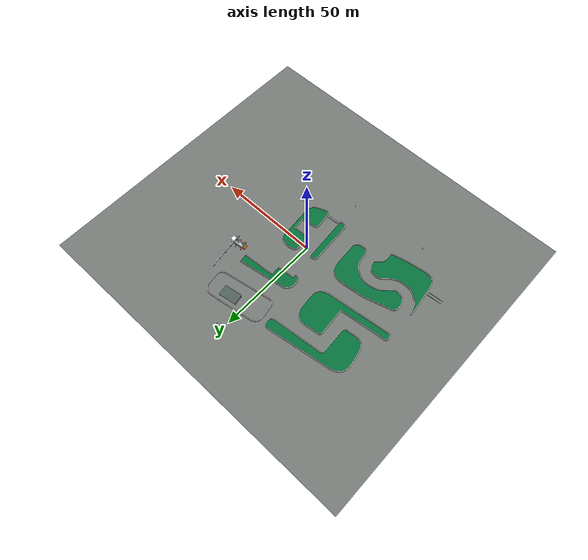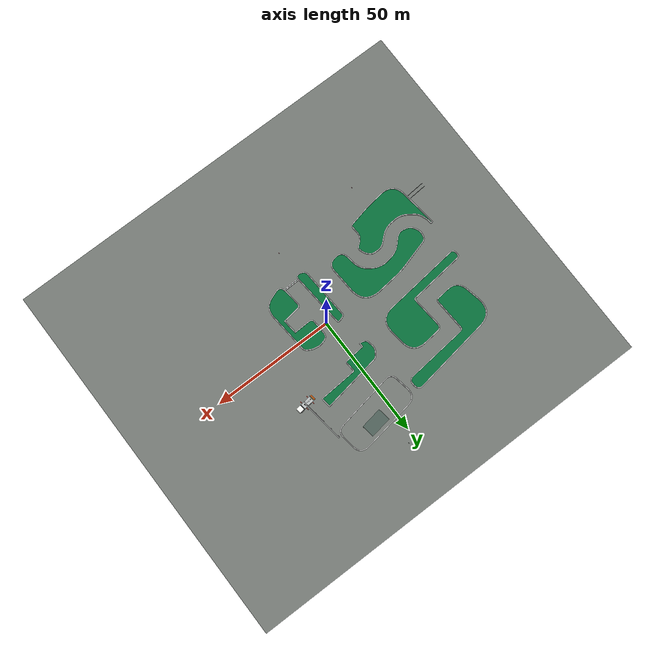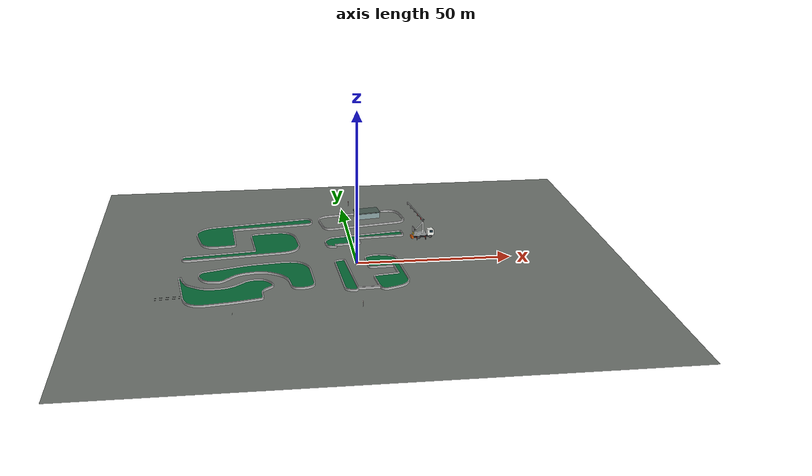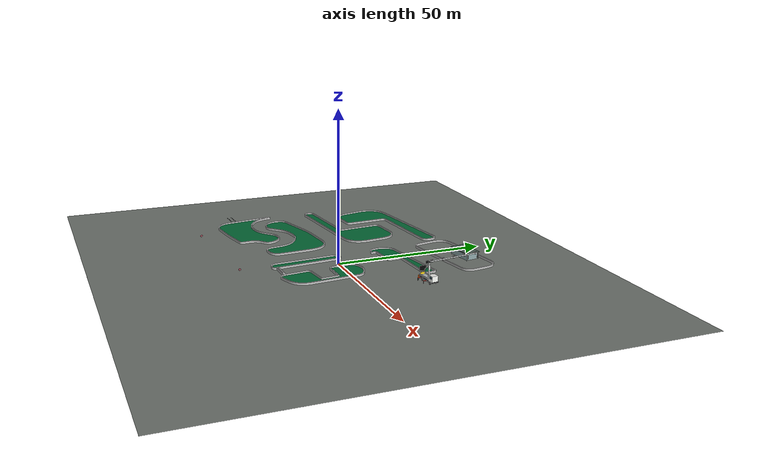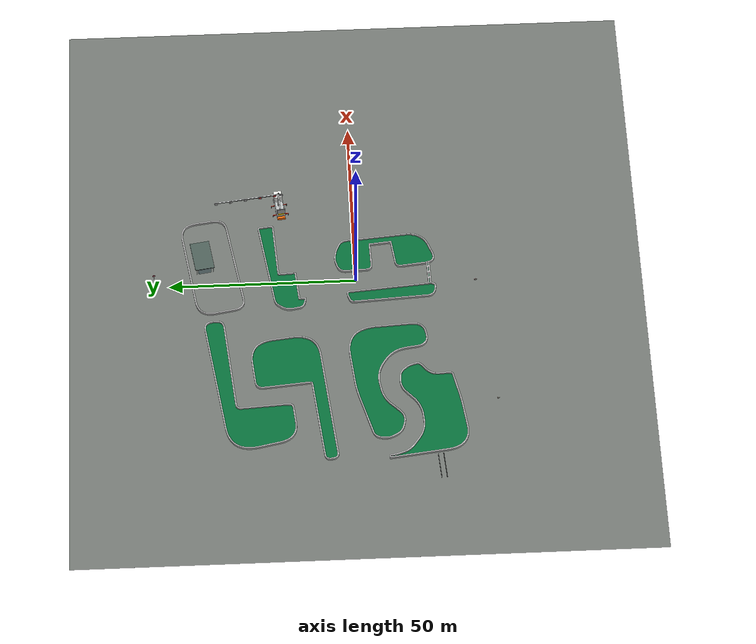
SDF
<sdf version="1.7">
 <world name="yongin_license_course">
  <physics type="ode">
   <max_step_size>0.002</max_step_size>
   <real_time_update_rate>500</real_time_update_rate>
  </physics>
  <spherical_coordinates>
   <surface_model>EARTH_WGS84</surface_model>
   <latitude_deg>37.288608845</latitude_deg>
   <longitude_deg>127.107298476</longitude_deg>
   <elevation>0.000</elevation>
   <heading_deg>208.536663</heading_deg>
  </spherical_coordinates>
  <scene>
   <ambient>0.82 0.82 0.82 1</ambient>
   <background>0.84 0.86 0.90 1</background>
   <grid>false</grid>
   <shadows>false</shadows>
  </scene>
  <light name="sun" type="directional">
   <pose>0 0 20 0 0 0</pose>
   <diffuse>0.8 0.8 0.8 1</diffuse>
   <specular>0.05 0.05 0.05 1</specular>
   <direction>-0.4 0.2 -1</direction>
  </light>
  <model name="floor_collision">
   <static>true</static>
   <pose>0.0000 0.0000 -0.0100 0.000000 0.000000 0.000000</pose>
   <link name="link">
    <collision name="collision"><geometry><box><size>171.0353 153.3308 0.0200</size></box></geometry></collision>
   </link>
  </model>
  <model name="ground_visual">
   <static>true</static>
   <pose>0.0000 0.0000 -0.0105 0.000000 0.000000 0.000000</pose>
   <link name="link">
    <visual name="visual">
     <cast_shadows>false</cast_shadows>
     <geometry><box><size>171.0353 153.3308 0.0010</size></box></geometry>
     <material>
      <ambient>0.45098 0.47059 0.45098 1</ambient>
      <diffuse>0.45098 0.47059 0.45098 1</diffuse>
      <emissive>0 0 0 1</emissive>
      <specular>0.02 0.02 0.02 1</specular>
     </material>
    </visual>
   </link>
  </model>
  <model name="green_island_00">
   <static>true</static>
   <pose>1.5638 -19.6897 0.0000 0.000000 0.000000 0.000000</pose>
   <link name="link">
    <visual name="visual">
     <cast_shadows>false</cast_shadows>
     <geometry><mesh><uri>model://yongin_license_course_runtime/meshes/green_island_00.stl</uri></mesh></geometry>
     <material>
      <script>
       <uri>model://yongin_license_course_runtime/materials/scripts</uri>
       <uri>model://yongin_license_course_runtime/materials/textures</uri>
       <uri>model://yongin_license_course_runtime/meshes</uri>
       <name>Yongin/Flat_066E39_02</name>
      </script>
      <render_order>2.0</render_order>
      <double_sided>true</double_sided>
      <ambient>0.02353 0.43137 0.22353 1</ambient>
      <diffuse>0.02353 0.43137 0.22353 1</diffuse>
      <emissive>0 0 0 1</emissive>
      <specular>0.02 0.02 0.02 1</specular>
     </material>
    </visual>
    <collision name="collision">
     <geometry>
      <mesh><uri>model://yongin_license_course_runtime/meshes/green_island_00_collision.stl</uri></mesh>
     </geometry>
    </collision>
   </link>
  </model>
  <model name="green_island_01">
   <static>true</static>
   <pose>-41.5910 -16.8551 0.0000 0.000000 0.000000 0.000000</pose>
   <link name="link">
    <visual name="visual">
     <cast_shadows>false</cast_shadows>
     <geometry><mesh><uri>model://yongin_license_course_runtime/meshes/green_island_01.stl</uri></mesh></geometry>
     <material>
      <script>
       <uri>model://yongin_license_course_runtime/materials/scripts</uri>
       <uri>model://yongin_license_course_runtime/materials/textures</uri>
       <uri>model://yongin_license_course_runtime/meshes</uri>
       <name>Yongin/Flat_066E39_02</name>
      </script>
      <render_order>2.0</render_order>
      <double_sided>true</double_sided>
      <ambient>0.02353 0.43137 0.22353 1</ambient>
      <diffuse>0.02353 0.43137 0.22353 1</diffuse>
      <emissive>0 0 0 1</emissive>
      <specular>0.02 0.02 0.02 1</specular>
     </material>
    </visual>
    <collision name="collision">
     <geometry>
      <mesh><uri>model://yongin_license_course_runtime/meshes/green_island_01_collision.stl</uri></mesh>
     </geometry>
    </collision>
   </link>
  </model>
  <model name="green_island_02">
   <static>true</static>
   <pose>-32.2600 -7.7168 0.0000 0.000000 0.000000 0.000000</pose>
   <link name="link">
    <visual name="visual">
     <cast_shadows>false</cast_shadows>
     <geometry><mesh><uri>model://yongin_license_course_runtime/meshes/green_island_02.stl</uri></mesh></geometry>
     <material>
      <script>
       <uri>model://yongin_license_course_runtime/materials/scripts</uri>
       <uri>model://yongin_license_course_runtime/materials/textures</uri>
       <uri>model://yongin_license_course_runtime/meshes</uri>
       <name>Yongin/Flat_066E39_02</name>
      </script>
      <render_order>2.0</render_order>
      <double_sided>true</double_sided>
      <ambient>0.02353 0.43137 0.22353 1</ambient>
      <diffuse>0.02353 0.43137 0.22353 1</diffuse>
      <emissive>0 0 0 1</emissive>
      <specular>0.02 0.02 0.02 1</specular>
     </material>
    </visual>
    <collision name="collision">
     <geometry>
      <mesh><uri>model://yongin_license_course_runtime/meshes/green_island_02_collision.stl</uri></mesh>
     </geometry>
    </collision>
   </link>
  </model>
  <model name="green_island_03">
   <static>true</static>
   <pose>-4.4200 -9.4348 0.0000 0.000000 0.000000 0.000000</pose>
   <link name="link">
    <visual name="visual">
     <cast_shadows>false</cast_shadows>
     <geometry><mesh><uri>model://yongin_license_course_runtime/meshes/green_island_03.stl</uri></mesh></geometry>
     <material>
      <script>
       <uri>model://yongin_license_course_runtime/materials/scripts</uri>
       <uri>model://yongin_license_course_runtime/materials/textures</uri>
       <uri>model://yongin_license_course_runtime/meshes</uri>
       <name>Yongin/Flat_066E39_02</name>
      </script>
      <render_order>2.0</render_order>
      <double_sided>true</double_sided>
      <ambient>0.02353 0.43137 0.22353 1</ambient>
      <diffuse>0.02353 0.43137 0.22353 1</diffuse>
      <emissive>0 0 0 1</emissive>
      <specular>0.02 0.02 0.02 1</specular>
     </material>
    </visual>
    <collision name="collision">
     <geometry>
      <mesh><uri>model://yongin_license_course_runtime/meshes/green_island_03_collision.stl</uri></mesh>
     </geometry>
    </collision>
   </link>
  </model>
  <model name="green_island_04">
   <static>true</static>
   <pose>8.6771 -7.9432 0.0000 0.000000 0.000000 0.000000</pose>
   <link name="link">
    <visual name="visual">
     <cast_shadows>false</cast_shadows>
     <geometry><mesh><uri>model://yongin_license_course_runtime/meshes/green_island_04.stl</uri></mesh></geometry>
     <material>
      <script>
       <uri>model://yongin_license_course_runtime/materials/scripts</uri>
       <uri>model://yongin_license_course_runtime/materials/textures</uri>
       <uri>model://yongin_license_course_runtime/meshes</uri>
       <name>Yongin/Flat_066E39_02</name>
      </script>
      <render_order>2.0</render_order>
      <double_sided>true</double_sided>
      <ambient>0.02353 0.43137 0.22353 1</ambient>
      <diffuse>0.02353 0.43137 0.22353 1</diffuse>
      <emissive>0 0 0 1</emissive>
      <specular>0.02 0.02 0.02 1</specular>
     </material>
    </visual>
    <collision name="collision">
     <geometry>
      <mesh><uri>model://yongin_license_course_runtime/meshes/green_island_04_collision.stl</uri></mesh>
     </geometry>
    </collision>
   </link>
  </model>
  <model name="green_island_05">
   <static>true</static>
   <pose>-36.6142 17.6920 0.0000 0.000000 0.000000 0.000000</pose>
   <link name="link">
    <visual name="visual">
     <cast_shadows>false</cast_shadows>
     <geometry><mesh><uri>model://yongin_license_course_runtime/meshes/green_island_05.stl</uri></mesh></geometry>
     <material>
      <script>
       <uri>model://yongin_license_course_runtime/materials/scripts</uri>
       <uri>model://yongin_license_course_runtime/materials/textures</uri>
       <uri>model://yongin_license_course_runtime/meshes</uri>
       <name>Yongin/Flat_066E39_02</name>
      </script>
      <render_order>2.0</render_order>
      <double_sided>true</double_sided>
      <ambient>0.02353 0.43137 0.22353 1</ambient>
      <diffuse>0.02353 0.43137 0.22353 1</diffuse>
      <emissive>0 0 0 1</emissive>
      <specular>0.02 0.02 0.02 1</specular>
     </material>
    </visual>
    <collision name="collision">
     <geometry>
      <mesh><uri>model://yongin_license_course_runtime/meshes/green_island_05_collision.stl</uri></mesh>
     </geometry>
    </collision>
   </link>
  </model>
  <model name="green_island_06">
   <static>true</static>
   <pose>-31.6255 29.0631 0.0000 0.000000 0.000000 0.000000</pose>
   <link name="link">
    <visual name="visual">
     <cast_shadows>false</cast_shadows>
     <geometry><mesh><uri>model://yongin_license_course_runtime/meshes/green_island_06.stl</uri></mesh></geometry>
     <material>
      <script>
       <uri>model://yongin_license_course_runtime/materials/scripts</uri>
       <uri>model://yongin_license_course_runtime/materials/textures</uri>
       <uri>model://yongin_license_course_runtime/meshes</uri>
       <name>Yongin/Flat_066E39_02</name>
      </script>
      <render_order>2.0</render_order>
      <double_sided>true</double_sided>
      <ambient>0.02353 0.43137 0.22353 1</ambient>
      <diffuse>0.02353 0.43137 0.22353 1</diffuse>
      <emissive>0 0 0 1</emissive>
      <specular>0.02 0.02 0.02 1</specular>
     </material>
    </visual>
    <collision name="collision">
     <geometry>
      <mesh><uri>model://yongin_license_course_runtime/meshes/green_island_06_collision.stl</uri></mesh>
     </geometry>
    </collision>
   </link>
  </model>
  <model name="green_island_07">
   <static>true</static>
   <pose>4.8965 19.6099 0.0000 0.000000 0.000000 0.000000</pose>
   <link name="link">
    <visual name="visual">
     <cast_shadows>false</cast_shadows>
     <geometry><mesh><uri>model://yongin_license_course_runtime/meshes/green_island_07.stl</uri></mesh></geometry>
     <material>
      <script>
       <uri>model://yongin_license_course_runtime/materials/scripts</uri>
       <uri>model://yongin_license_course_runtime/materials/textures</uri>
       <uri>model://yongin_license_course_runtime/meshes</uri>
       <name>Yongin/Flat_066E39_02</name>
      </script>
      <render_order>2.0</render_order>
      <double_sided>true</double_sided>
      <ambient>0.02353 0.43137 0.22353 1</ambient>
      <diffuse>0.02353 0.43137 0.22353 1</diffuse>
      <emissive>0 0 0 1</emissive>
      <specular>0.02 0.02 0.02 1</specular>
     </material>
    </visual>
    <collision name="collision">
     <geometry>
      <mesh><uri>model://yongin_license_course_runtime/meshes/green_island_07_collision.stl</uri></mesh>
     </geometry>
    </collision>
   </link>
  </model>
  <model name="curb_side_ring_00">
   <static>true</static>
   <pose>1.6019 -19.6923 0.0000 0.000000 0.000000 0.000000</pose>
   <link name="link">
    <visual name="visual">
     <cast_shadows>false</cast_shadows>
     <geometry>
      <mesh>
       <uri>model://yongin_license_course_runtime/meshes/curb_side_ring_00_visual.obj</uri>
       <scale>1 1 3.5</scale>
      </mesh>
     </geometry>
    </visual>
    <collision name="collision">
     <geometry>
      <mesh>
       <uri>model://yongin_license_course_runtime/meshes/curb_side_ring_00.stl</uri>
       <scale>1 1 3.5</scale>
      </mesh>
     </geometry>
    </collision>
   </link>
  </model>
  <model name="curb_top_ring_00">
   <static>true</static>
   <pose>1.6019 -19.6923 0.5000 0.000000 0.000000 0.000000</pose>
   <link name="link">
    <visual name="visual">
     <cast_shadows>false</cast_shadows>
     <geometry>
      <mesh><uri>model://yongin_license_course_runtime/meshes/curb_top_ring_00_visual.obj</uri></mesh>
     </geometry>
    </visual>
   </link>
  </model>
  <model name="curb_side_ring_01">
   <static>true</static>
   <pose>-41.5910 -16.8552 0.0000 0.000000 0.000000 0.000000</pose>
   <link name="link">
    <visual name="visual">
     <cast_shadows>false</cast_shadows>
     <geometry>
      <mesh>
       <uri>model://yongin_license_course_runtime/meshes/curb_side_ring_01_visual.obj</uri>
       <scale>1 1 3.5</scale>
      </mesh>
     </geometry>
    </visual>
    <collision name="collision">
     <geometry>
      <mesh>
       <uri>model://yongin_license_course_runtime/meshes/curb_side_ring_01.stl</uri>
       <scale>1 1 3.5</scale>
      </mesh>
     </geometry>
    </collision>
   </link>
  </model>
  <model name="curb_top_ring_01">
   <static>true</static>
   <pose>-41.5910 -16.8552 0.5000 0.000000 0.000000 0.000000</pose>
   <link name="link">
    <visual name="visual">
     <cast_shadows>false</cast_shadows>
     <geometry>
      <mesh><uri>model://yongin_license_course_runtime/meshes/curb_top_ring_01_visual.obj</uri></mesh>
     </geometry>
    </visual>
   </link>
  </model>
  <model name="curb_side_ring_02">
   <static>true</static>
   <pose>-32.2600 -7.7168 0.0000 0.000000 0.000000 0.000000</pose>
   <link name="link">
    <visual name="visual">
     <cast_shadows>false</cast_shadows>
     <geometry>
      <mesh>
       <uri>model://yongin_license_course_runtime/meshes/curb_side_ring_02_visual.obj</uri>
       <scale>1 1 3.5</scale>
      </mesh>
     </geometry>
    </visual>
    <collision name="collision">
     <geometry>
      <mesh>
       <uri>model://yongin_license_course_runtime/meshes/curb_side_ring_02.stl</uri>
       <scale>1 1 3.5</scale>
      </mesh>
     </geometry>
    </collision>
   </link>
  </model>
  <model name="curb_top_ring_02">
   <static>true</static>
   <pose>-32.2600 -7.7168 0.5000 0.000000 0.000000 0.000000</pose>
   <link name="link">
    <visual name="visual">
     <cast_shadows>false</cast_shadows>
     <geometry>
      <mesh><uri>model://yongin_license_course_runtime/meshes/curb_top_ring_02_visual.obj</uri></mesh>
     </geometry>
    </visual>
   </link>
  </model>
  <model name="curb_side_ring_03">
   <static>true</static>
   <pose>-4.4200 -9.4348 0.0000 0.000000 0.000000 0.000000</pose>
   <link name="link">
    <visual name="visual">
     <cast_shadows>false</cast_shadows>
     <geometry>
      <mesh>
       <uri>model://yongin_license_course_runtime/meshes/curb_side_ring_03_visual.obj</uri>
       <scale>1 1 3.5</scale>
      </mesh>
     </geometry>
    </visual>
    <collision name="collision">
     <geometry>
      <mesh>
       <uri>model://yongin_license_course_runtime/meshes/curb_side_ring_03.stl</uri>
       <scale>1 1 3.5</scale>
      </mesh>
     </geometry>
    </collision>
   </link>
  </model>
  <model name="curb_top_ring_03">
   <static>true</static>
   <pose>-4.4200 -9.4348 0.5000 0.000000 0.000000 0.000000</pose>
   <link name="link">
    <visual name="visual">
     <cast_shadows>false</cast_shadows>
     <geometry>
      <mesh><uri>model://yongin_license_course_runtime/meshes/curb_top_ring_03_visual.obj</uri></mesh>
     </geometry>
    </visual>
   </link>
  </model>
  <model name="curb_side_ring_04">
   <static>true</static>
   <pose>8.6771 -7.9432 0.0000 0.000000 0.000000 0.000000</pose>
   <link name="link">
    <visual name="visual">
     <cast_shadows>false</cast_shadows>
     <geometry>
      <mesh>
       <uri>model://yongin_license_course_runtime/meshes/curb_side_ring_04_visual.obj</uri>
       <scale>1 1 3.5</scale>
      </mesh>
     </geometry>
    </visual>
    <collision name="collision">
     <geometry>
      <mesh>
       <uri>model://yongin_license_course_runtime/meshes/curb_side_ring_04.stl</uri>
       <scale>1 1 3.5</scale>
      </mesh>
     </geometry>
    </collision>
   </link>
  </model>
  <model name="curb_top_ring_04">
   <static>true</static>
   <pose>8.6771 -7.9432 0.5000 0.000000 0.000000 0.000000</pose>
   <link name="link">
    <visual name="visual">
     <cast_shadows>false</cast_shadows>
     <geometry>
      <mesh><uri>model://yongin_license_course_runtime/meshes/curb_top_ring_04_visual.obj</uri></mesh>
     </geometry>
    </visual>
   </link>
  </model>
  <model name="curb_side_ring_05">
   <static>true</static>
   <pose>-36.6142 17.6920 0.0000 0.000000 0.000000 0.000000</pose>
   <link name="link">
    <visual name="visual">
     <cast_shadows>false</cast_shadows>
     <geometry>
      <mesh>
       <uri>model://yongin_license_course_runtime/meshes/curb_side_ring_05_visual.obj</uri>
       <scale>1 1 3.5</scale>
      </mesh>
     </geometry>
    </visual>
    <collision name="collision">
     <geometry>
      <mesh>
       <uri>model://yongin_license_course_runtime/meshes/curb_side_ring_05.stl</uri>
       <scale>1 1 3.5</scale>
      </mesh>
     </geometry>
    </collision>
   </link>
  </model>
  <model name="curb_top_ring_05">
   <static>true</static>
   <pose>-36.6142 17.6920 0.5000 0.000000 0.000000 0.000000</pose>
   <link name="link">
    <visual name="visual">
     <cast_shadows>false</cast_shadows>
     <geometry>
      <mesh><uri>model://yongin_license_course_runtime/meshes/curb_top_ring_05_visual.obj</uri></mesh>
     </geometry>
    </visual>
   </link>
  </model>
  <model name="curb_side_ring_06">
   <static>true</static>
   <pose>-31.6255 29.0631 0.0000 0.000000 0.000000 0.000000</pose>
   <link name="link">
    <visual name="visual">
     <cast_shadows>false</cast_shadows>
     <geometry>
      <mesh>
       <uri>model://yongin_license_course_runtime/meshes/curb_side_ring_06_visual.obj</uri>
       <scale>1 1 3.5</scale>
      </mesh>
     </geometry>
    </visual>
    <collision name="collision">
     <geometry>
      <mesh>
       <uri>model://yongin_license_course_runtime/meshes/curb_side_ring_06.stl</uri>
       <scale>1 1 3.5</scale>
      </mesh>
     </geometry>
    </collision>
   </link>
  </model>
  <model name="curb_top_ring_06">
   <static>true</static>
   <pose>-31.6255 29.0631 0.5000 0.000000 0.000000 0.000000</pose>
   <link name="link">
    <visual name="visual">
     <cast_shadows>false</cast_shadows>
     <geometry>
      <mesh><uri>model://yongin_license_course_runtime/meshes/curb_top_ring_06_visual.obj</uri></mesh>
     </geometry>
    </visual>
   </link>
  </model>
  <model name="curb_side_ring_07">
   <static>true</static>
   <pose>4.8965 19.6140 0.0000 0.000000 0.000000 0.000000</pose>
   <link name="link">
    <visual name="visual">
     <cast_shadows>false</cast_shadows>
     <geometry>
      <mesh>
       <uri>model://yongin_license_course_runtime/meshes/curb_side_ring_07_visual.obj</uri>
       <scale>1 1 3.5</scale>
      </mesh>
     </geometry>
    </visual>
    <collision name="collision">
     <geometry>
      <mesh>
       <uri>model://yongin_license_course_runtime/meshes/curb_side_ring_07.stl</uri>
       <scale>1 1 3.5</scale>
      </mesh>
     </geometry>
    </collision>
   </link>
  </model>
  <model name="curb_top_ring_07">
   <static>true</static>
   <pose>4.8965 19.6140 0.5000 0.000000 0.000000 0.000000</pose>
   <link name="link">
    <visual name="visual">
     <cast_shadows>false</cast_shadows>
     <geometry>
      <mesh><uri>model://yongin_license_course_runtime/meshes/curb_top_ring_07_visual.obj</uri></mesh>
     </geometry>
    </visual>
   </link>
  </model>
  <model name="curb_side_ring_08">
   <static>true</static>
   <pose>5.8321 38.1805 0.0000 0.000000 0.000000 0.000000</pose>
   <link name="link">
    <visual name="visual">
     <cast_shadows>false</cast_shadows>
     <geometry>
      <mesh>
       <uri>model://yongin_license_course_runtime/meshes/curb_side_ring_08_visual.obj</uri>
       <scale>1 1 3.5</scale>
      </mesh>
     </geometry>
    </visual>
    <collision name="collision">
     <geometry>
      <mesh>
       <uri>model://yongin_license_course_runtime/meshes/curb_side_ring_08.stl</uri>
       <scale>1 1 3.5</scale>
      </mesh>
     </geometry>
    </collision>
   </link>
  </model>
  <model name="curb_top_ring_08">
   <static>true</static>
   <pose>5.8321 38.1805 0.5000 0.000000 0.000000 0.000000</pose>
   <link name="link">
    <visual name="visual">
     <cast_shadows>false</cast_shadows>
     <geometry>
      <mesh><uri>model://yongin_license_course_runtime/meshes/curb_top_ring_08_visual.obj</uri></mesh>
     </geometry>
    </visual>
   </link>
  </model>
  <model name="course_waiting_shelter_roof">
   <static>true</static>
   <pose>8.1635 40.9167 0.0000 0.000000 0.000000 -2.982768</pose>
   <link name="link">
    <visual name="visual_0000">
     <cast_shadows>false</cast_shadows>
     <pose>0.0000 -0.0000 2.6500 0.000000 0.000000 0.000000</pose>
     <geometry><box><size>8.7500 5.1500 0.2000</size></box></geometry>
     <material>
      <ambient>0.30196 0.37255 0.34510 1</ambient>
      <diffuse>0.30196 0.37255 0.34510 1</diffuse>
      <emissive>0 0 0 1</emissive>
      <specular>0.02 0.02 0.02 1</specular>
     </material>
    </visual>
    <collision name="collision_0000">
     <pose>0.0000 -0.0000 2.6500 0.000000 0.000000 0.000000</pose>
     <geometry><box><size>8.7500 5.1500 0.2000</size></box></geometry>
    </collision>
   </link>
  </model>
  <model name="course_waiting_shelter_frame">
   <static>true</static>
   <pose>8.1635 40.9167 0.0000 0.000000 0.000000 -2.982768</pose>
   <link name="link">
    <visual name="visual_0000">
     <cast_shadows>false</cast_shadows>
     <pose>-4.0200 -2.2200 1.3750 0.000000 0.000000 0.000000</pose>
     <geometry><box><size>0.1200 0.1200 2.3500</size></box></geometry>
     <material>
      <ambient>0.16863 0.18824 0.17647 1</ambient>
      <diffuse>0.16863 0.18824 0.17647 1</diffuse>
      <emissive>0 0 0 1</emissive>
      <specular>0.02 0.02 0.02 1</specular>
     </material>
    </visual>
    <visual name="visual_0001">
     <cast_shadows>false</cast_shadows>
     <pose>-4.0200 2.2200 1.3750 0.000000 0.000000 0.000000</pose>
     <geometry><box><size>0.1200 0.1200 2.3500</size></box></geometry>
     <material>
      <ambient>0.16863 0.18824 0.17647 1</ambient>
      <diffuse>0.16863 0.18824 0.17647 1</diffuse>
      <emissive>0 0 0 1</emissive>
      <specular>0.02 0.02 0.02 1</specular>
     </material>
    </visual>
    <visual name="visual_0002">
     <cast_shadows>false</cast_shadows>
     <pose>4.0200 -2.2200 1.3750 0.000000 0.000000 0.000000</pose>
     <geometry><box><size>0.1200 0.1200 2.3500</size></box></geometry>
     <material>
      <ambient>0.16863 0.18824 0.17647 1</ambient>
      <diffuse>0.16863 0.18824 0.17647 1</diffuse>
      <emissive>0 0 0 1</emissive>
      <specular>0.02 0.02 0.02 1</specular>
     </material>
    </visual>
    <visual name="visual_0003">
     <cast_shadows>false</cast_shadows>
     <pose>4.0200 2.2200 1.3750 0.000000 0.000000 0.000000</pose>
     <geometry><box><size>0.1200 0.1200 2.3500</size></box></geometry>
     <material>
      <ambient>0.16863 0.18824 0.17647 1</ambient>
      <diffuse>0.16863 0.18824 0.17647 1</diffuse>
      <emissive>0 0 0 1</emissive>
      <specular>0.02 0.02 0.02 1</specular>
     </material>
    </visual>
    <collision name="collision_0000">
     <pose>-4.0200 -2.2200 1.3750 0.000000 0.000000 0.000000</pose>
     <geometry><box><size>0.1200 0.1200 2.3500</size></box></geometry>
    </collision>
    <collision name="collision_0001">
     <pose>-4.0200 2.2200 1.3750 0.000000 0.000000 0.000000</pose>
     <geometry><box><size>0.1200 0.1200 2.3500</size></box></geometry>
    </collision>
    <collision name="collision_0002">
     <pose>4.0200 -2.2200 1.3750 0.000000 0.000000 0.000000</pose>
     <geometry><box><size>0.1200 0.1200 2.3500</size></box></geometry>
    </collision>
    <collision name="collision_0003">
     <pose>4.0200 2.2200 1.3750 0.000000 0.000000 0.000000</pose>
     <geometry><box><size>0.1200 0.1200 2.3500</size></box></geometry>
    </collision>
   </link>
  </model>
  <model name="course_waiting_shelter_glass">
   <static>true</static>
   <pose>8.2119 40.6146 0.0000 0.000000 0.000000 -2.982768</pose>
   <link name="link">
    <visual name="visual_0000">
     <cast_shadows>false</cast_shadows>
     <pose>-0.0000 1.9940 1.3500 0.000000 0.000000 0.000000</pose>
     <geometry><box><size>8.4000 0.0800 1.9000</size></box></geometry>
     <material>
      <ambient>0.54118 0.63529 0.64314 1</ambient>
      <diffuse>0.54118 0.63529 0.64314 1</diffuse>
      <emissive>0 0 0 1</emissive>
      <specular>0.02 0.02 0.02 1</specular>
     </material>
    </visual>
    <visual name="visual_0001">
     <cast_shadows>false</cast_shadows>
     <pose>-4.1200 -0.3060 1.3500 0.000000 0.000000 0.000000</pose>
     <geometry><box><size>0.0800 3.4560 1.9000</size></box></geometry>
     <material>
      <ambient>0.54118 0.63529 0.64314 1</ambient>
      <diffuse>0.54118 0.63529 0.64314 1</diffuse>
      <emissive>0 0 0 1</emissive>
      <specular>0.02 0.02 0.02 1</specular>
     </material>
    </visual>
    <visual name="visual_0002">
     <cast_shadows>false</cast_shadows>
     <pose>4.1200 -0.3060 1.3500 0.000000 0.000000 0.000000</pose>
     <geometry><box><size>0.0800 3.4560 1.9000</size></box></geometry>
     <material>
      <ambient>0.54118 0.63529 0.64314 1</ambient>
      <diffuse>0.54118 0.63529 0.64314 1</diffuse>
      <emissive>0 0 0 1</emissive>
      <specular>0.02 0.02 0.02 1</specular>
     </material>
    </visual>
   </link>
  </model>
  <model name="course_waiting_shelter_bench">
   <static>true</static>
   <pose>8.4395 39.1937 0.0000 0.000000 0.000000 -2.982768</pose>
   <link name="link">
    <visual name="visual_0000">
     <cast_shadows>false</cast_shadows>
     <pose>0.0000 -0.0950 0.6700 0.000000 0.000000 0.000000</pose>
     <geometry><box><size>5.7120 0.3400 0.1600</size></box></geometry>
     <material>
      <ambient>0.54510 0.38431 0.25098 1</ambient>
      <diffuse>0.54510 0.38431 0.25098 1</diffuse>
      <emissive>0 0 0 1</emissive>
      <specular>0.02 0.02 0.02 1</specular>
     </material>
    </visual>
    <visual name="visual_0001">
     <cast_shadows>false</cast_shadows>
     <pose>-0.0000 0.2050 1.0500 0.000000 0.000000 0.000000</pose>
     <geometry><box><size>5.7120 0.1200 0.7200</size></box></geometry>
     <material>
      <ambient>0.54510 0.38431 0.25098 1</ambient>
      <diffuse>0.54510 0.38431 0.25098 1</diffuse>
      <emissive>0 0 0 1</emissive>
      <specular>0.02 0.02 0.02 1</specular>
     </material>
    </visual>
    <collision name="collision_0000">
     <pose>0.0000 -0.0950 0.6700 0.000000 0.000000 0.000000</pose>
     <geometry><box><size>5.7120 0.3400 0.1600</size></box></geometry>
    </collision>
    <collision name="collision_0001">
     <pose>-0.0000 0.2050 1.0500 0.000000 0.000000 0.000000</pose>
     <geometry><box><size>5.7120 0.1200 0.7200</size></box></geometry>
    </collision>
   </link>
  </model>
  <model name="course_railroad_grooves">
   <static>true</static>
   <pose>-58.6797 -19.9835 0.0000 0.000000 0.000000 0.075049</pose>
   <link name="link">
    <visual name="visual">
     <cast_shadows>false</cast_shadows>
     <geometry>
      <mesh><uri>model://yongin_license_course_runtime/meshes/course_railroad_grooves.stl</uri></mesh>
     </geometry>
     <material>
      <script>
       <uri>model://yongin_license_course_runtime/materials/scripts</uri>
       <uri>model://yongin_license_course_runtime/materials/textures</uri>
       <uri>model://yongin_license_course_runtime/meshes</uri>
       <name>Yongin/Flat_262826_12</name>
      </script>
      <render_order>12.0</render_order>
      <double_sided>true</double_sided>
      <ambient>0.14902 0.15686 0.14902 1</ambient>
      <diffuse>0.14902 0.15686 0.14902 1</diffuse>
      <emissive>0 0 0 1</emissive>
      <specular>0.02 0.02 0.02 1</specular>
     </material>
    </visual>
   </link>
  </model>
  <model name="course_railroad_rails">
   <static>true</static>
   <pose>-58.6797 -19.9835 0.0000 0.000000 0.000000 0.075049</pose>
   <link name="link">
    <visual name="visual">
     <cast_shadows>false</cast_shadows>
     <geometry>
      <mesh><uri>model://yongin_license_course_runtime/meshes/course_railroad_rails.stl</uri></mesh>
     </geometry>
     <material>
      <script>
       <uri>model://yongin_license_course_runtime/materials/scripts</uri>
       <uri>model://yongin_license_course_runtime/materials/textures</uri>
       <uri>model://yongin_license_course_runtime/meshes</uri>
       <name>Yongin/Flat_858985_13</name>
      </script>
      <render_order>13.0</render_order>
      <double_sided>true</double_sided>
      <ambient>0.52157 0.53725 0.52157 1</ambient>
      <diffuse>0.52157 0.53725 0.52157 1</diffuse>
      <emissive>0 0 0 1</emissive>
      <specular>0.02 0.02 0.02 1</specular>
     </material>
    </visual>
   </link>
  </model>
  <model name="sign_20_00">
   <static>true</static>
   <pose>-1.9025 -31.9655 0.0000 0.000000 0.000000 -3.043854</pose>
   <link name="link">
    <visual name="pole">
     <cast_shadows>false</cast_shadows>
     <pose>0.0000 0.0000 0.6250 0.000000 0.000000 0.000000</pose>
     <geometry><cylinder><radius>0.0350</radius><length>1.2500</length></cylinder></geometry>
     <material>
      <ambient>0.09804 0.09804 0.09804 1</ambient>
      <diffuse>0.09804 0.09804 0.09804 1</diffuse>
      <emissive>0 0 0 1</emissive>
      <specular>0.02 0.02 0.02 1</specular>
     </material>
    </visual>
    <visual name="outer_red">
     <cast_shadows>false</cast_shadows>
     <pose>0.0000 0.0000 1.5000 0.000000 1.570796 0.000000</pose>
     <geometry><cylinder><radius>0.3800</radius><length>0.0450</length></cylinder></geometry>
     <material>
      <ambient>0.58824 0.28235 0.32941 1</ambient>
      <diffuse>0.58824 0.28235 0.32941 1</diffuse>
      <emissive>0 0 0 1</emissive>
      <specular>0.02 0.02 0.02 1</specular>
     </material>
    </visual>
    <visual name="inner_white_front">
     <cast_shadows>false</cast_shadows>
     <pose>0.0280 0.0000 1.5000 0.000000 1.570796 0.000000</pose>
     <geometry><cylinder><radius>0.2850</radius><length>0.0500</length></cylinder></geometry>
     <material>
      <ambient>0.88627 0.90588 0.83137 1</ambient>
      <diffuse>0.88627 0.90588 0.83137 1</diffuse>
      <emissive>0 0 0 1</emissive>
      <specular>0.02 0.02 0.02 1</specular>
     </material>
    </visual>
    <visual name="num_front_2_top">
     <cast_shadows>false</cast_shadows>
     <pose>0.0580 -0.0750 1.6200 0.000000 0.000000 0.000000</pose>
     <geometry><box><size>0.0140 0.1200 0.0300</size></box></geometry>
     <material>
      <ambient>0.06667 0.09412 0.08235 1</ambient>
      <diffuse>0.06667 0.09412 0.08235 1</diffuse>
      <emissive>0 0 0 1</emissive>
      <specular>0.02 0.02 0.02 1</specular>
     </material>
    </visual>
    <visual name="num_front_2_ur">
     <cast_shadows>false</cast_shadows>
     <pose>0.0580 -0.0300 1.5600 0.000000 0.000000 0.000000</pose>
     <geometry><box><size>0.0140 0.0300 0.1200</size></box></geometry>
     <material>
      <ambient>0.06667 0.09412 0.08235 1</ambient>
      <diffuse>0.06667 0.09412 0.08235 1</diffuse>
      <emissive>0 0 0 1</emissive>
      <specular>0.02 0.02 0.02 1</specular>
     </material>
    </visual>
    <visual name="num_front_2_mid">
     <cast_shadows>false</cast_shadows>
     <pose>0.0580 -0.0750 1.5000 0.000000 0.000000 0.000000</pose>
     <geometry><box><size>0.0140 0.1200 0.0300</size></box></geometry>
     <material>
      <ambient>0.06667 0.09412 0.08235 1</ambient>
      <diffuse>0.06667 0.09412 0.08235 1</diffuse>
      <emissive>0 0 0 1</emissive>
      <specular>0.02 0.02 0.02 1</specular>
     </material>
    </visual>
    <visual name="num_front_2_ll">
     <cast_shadows>false</cast_shadows>
     <pose>0.0580 -0.1200 1.4400 0.000000 0.000000 0.000000</pose>
     <geometry><box><size>0.0140 0.0300 0.1200</size></box></geometry>
     <material>
      <ambient>0.06667 0.09412 0.08235 1</ambient>
      <diffuse>0.06667 0.09412 0.08235 1</diffuse>
      <emissive>0 0 0 1</emissive>
      <specular>0.02 0.02 0.02 1</specular>
     </material>
    </visual>
    <visual name="num_front_2_bot">
     <cast_shadows>false</cast_shadows>
     <pose>0.0580 -0.0750 1.3800 0.000000 0.000000 0.000000</pose>
     <geometry><box><size>0.0140 0.1200 0.0300</size></box></geometry>
     <material>
      <ambient>0.06667 0.09412 0.08235 1</ambient>
      <diffuse>0.06667 0.09412 0.08235 1</diffuse>
      <emissive>0 0 0 1</emissive>
      <specular>0.02 0.02 0.02 1</specular>
     </material>
    </visual>
    <visual name="num_front_0_top">
     <cast_shadows>false</cast_shadows>
     <pose>0.0580 0.0900 1.6200 0.000000 0.000000 0.000000</pose>
     <geometry><box><size>0.0140 0.1200 0.0300</size></box></geometry>
     <material>
      <ambient>0.06667 0.09412 0.08235 1</ambient>
      <diffuse>0.06667 0.09412 0.08235 1</diffuse>
      <emissive>0 0 0 1</emissive>
      <specular>0.02 0.02 0.02 1</specular>
     </material>
    </visual>
    <visual name="num_front_0_bot">
     <cast_shadows>false</cast_shadows>
     <pose>0.0580 0.0900 1.3800 0.000000 0.000000 0.000000</pose>
     <geometry><box><size>0.0140 0.1200 0.0300</size></box></geometry>
     <material>
      <ambient>0.06667 0.09412 0.08235 1</ambient>
      <diffuse>0.06667 0.09412 0.08235 1</diffuse>
      <emissive>0 0 0 1</emissive>
      <specular>0.02 0.02 0.02 1</specular>
     </material>
    </visual>
    <visual name="num_front_0_left">
     <cast_shadows>false</cast_shadows>
     <pose>0.0580 0.0450 1.5000 0.000000 0.000000 0.000000</pose>
     <geometry><box><size>0.0140 0.0300 0.2400</size></box></geometry>
     <material>
      <ambient>0.06667 0.09412 0.08235 1</ambient>
      <diffuse>0.06667 0.09412 0.08235 1</diffuse>
      <emissive>0 0 0 1</emissive>
      <specular>0.02 0.02 0.02 1</specular>
     </material>
    </visual>
    <visual name="num_front_0_right">
     <cast_shadows>false</cast_shadows>
     <pose>0.0580 0.1350 1.5000 0.000000 0.000000 0.000000</pose>
     <geometry><box><size>0.0140 0.0300 0.2400</size></box></geometry>
     <material>
      <ambient>0.06667 0.09412 0.08235 1</ambient>
      <diffuse>0.06667 0.09412 0.08235 1</diffuse>
      <emissive>0 0 0 1</emissive>
      <specular>0.02 0.02 0.02 1</specular>
     </material>
    </visual>
    <collision name="collision_pole">
     <pose>0.0000 0.0000 0.6250 0.000000 0.000000 0.000000</pose>
     <geometry><cylinder><radius>0.0350</radius><length>1.2500</length></cylinder></geometry>
    </collision>
    <collision name="collision_outer_red">
     <pose>0.0000 0.0000 1.5000 0.000000 1.570796 0.000000</pose>
     <geometry><cylinder><radius>0.3800</radius><length>0.0450</length></cylinder></geometry>
    </collision>
   </link>
  </model>
  <model name="sign_20_01">
   <static>true</static>
   <pose>2.9662 53.9970 0.0000 0.000000 0.000000 0.167552</pose>
   <link name="link">
    <visual name="pole">
     <cast_shadows>false</cast_shadows>
     <pose>0.0000 0.0000 0.6250 0.000000 0.000000 0.000000</pose>
     <geometry><cylinder><radius>0.0350</radius><length>1.2500</length></cylinder></geometry>
     <material>
      <ambient>0.09804 0.09804 0.09804 1</ambient>
      <diffuse>0.09804 0.09804 0.09804 1</diffuse>
      <emissive>0 0 0 1</emissive>
      <specular>0.02 0.02 0.02 1</specular>
     </material>
    </visual>
    <visual name="outer_red">
     <cast_shadows>false</cast_shadows>
     <pose>0.0000 0.0000 1.5000 0.000000 1.570796 0.000000</pose>
     <geometry><cylinder><radius>0.3800</radius><length>0.0450</length></cylinder></geometry>
     <material>
      <ambient>0.58824 0.28235 0.32941 1</ambient>
      <diffuse>0.58824 0.28235 0.32941 1</diffuse>
      <emissive>0 0 0 1</emissive>
      <specular>0.02 0.02 0.02 1</specular>
     </material>
    </visual>
    <visual name="inner_white_front">
     <cast_shadows>false</cast_shadows>
     <pose>0.0280 0.0000 1.5000 0.000000 1.570796 0.000000</pose>
     <geometry><cylinder><radius>0.2850</radius><length>0.0500</length></cylinder></geometry>
     <material>
      <ambient>0.88627 0.90588 0.83137 1</ambient>
      <diffuse>0.88627 0.90588 0.83137 1</diffuse>
      <emissive>0 0 0 1</emissive>
      <specular>0.02 0.02 0.02 1</specular>
     </material>
    </visual>
    <visual name="num_front_2_top">
     <cast_shadows>false</cast_shadows>
     <pose>0.0580 -0.0750 1.6200 0.000000 0.000000 0.000000</pose>
     <geometry><box><size>0.0140 0.1200 0.0300</size></box></geometry>
     <material>
      <ambient>0.06667 0.09412 0.08235 1</ambient>
      <diffuse>0.06667 0.09412 0.08235 1</diffuse>
      <emissive>0 0 0 1</emissive>
      <specular>0.02 0.02 0.02 1</specular>
     </material>
    </visual>
    <visual name="num_front_2_ur">
     <cast_shadows>false</cast_shadows>
     <pose>0.0580 -0.0300 1.5600 0.000000 0.000000 0.000000</pose>
     <geometry><box><size>0.0140 0.0300 0.1200</size></box></geometry>
     <material>
      <ambient>0.06667 0.09412 0.08235 1</ambient>
      <diffuse>0.06667 0.09412 0.08235 1</diffuse>
      <emissive>0 0 0 1</emissive>
      <specular>0.02 0.02 0.02 1</specular>
     </material>
    </visual>
    <visual name="num_front_2_mid">
     <cast_shadows>false</cast_shadows>
     <pose>0.0580 -0.0750 1.5000 0.000000 0.000000 0.000000</pose>
     <geometry><box><size>0.0140 0.1200 0.0300</size></box></geometry>
     <material>
      <ambient>0.06667 0.09412 0.08235 1</ambient>
      <diffuse>0.06667 0.09412 0.08235 1</diffuse>
      <emissive>0 0 0 1</emissive>
      <specular>0.02 0.02 0.02 1</specular>
     </material>
    </visual>
    <visual name="num_front_2_ll">
     <cast_shadows>false</cast_shadows>
     <pose>0.0580 -0.1200 1.4400 0.000000 0.000000 0.000000</pose>
     <geometry><box><size>0.0140 0.0300 0.1200</size></box></geometry>
     <material>
      <ambient>0.06667 0.09412 0.08235 1</ambient>
      <diffuse>0.06667 0.09412 0.08235 1</diffuse>
      <emissive>0 0 0 1</emissive>
      <specular>0.02 0.02 0.02 1</specular>
     </material>
    </visual>
    <visual name="num_front_2_bot">
     <cast_shadows>false</cast_shadows>
     <pose>0.0580 -0.0750 1.3800 0.000000 0.000000 0.000000</pose>
     <geometry><box><size>0.0140 0.1200 0.0300</size></box></geometry>
     <material>
      <ambient>0.06667 0.09412 0.08235 1</ambient>
      <diffuse>0.06667 0.09412 0.08235 1</diffuse>
      <emissive>0 0 0 1</emissive>
      <specular>0.02 0.02 0.02 1</specular>
     </material>
    </visual>
    <visual name="num_front_0_top">
     <cast_shadows>false</cast_shadows>
     <pose>0.0580 0.0900 1.6200 0.000000 0.000000 0.000000</pose>
     <geometry><box><size>0.0140 0.1200 0.0300</size></box></geometry>
     <material>
      <ambient>0.06667 0.09412 0.08235 1</ambient>
      <diffuse>0.06667 0.09412 0.08235 1</diffuse>
      <emissive>0 0 0 1</emissive>
      <specular>0.02 0.02 0.02 1</specular>
     </material>
    </visual>
    <visual name="num_front_0_bot">
     <cast_shadows>false</cast_shadows>
     <pose>0.0580 0.0900 1.3800 0.000000 0.000000 0.000000</pose>
     <geometry><box><size>0.0140 0.1200 0.0300</size></box></geometry>
     <material>
      <ambient>0.06667 0.09412 0.08235 1</ambient>
      <diffuse>0.06667 0.09412 0.08235 1</diffuse>
      <emissive>0 0 0 1</emissive>
      <specular>0.02 0.02 0.02 1</specular>
     </material>
    </visual>
    <visual name="num_front_0_left">
     <cast_shadows>false</cast_shadows>
     <pose>0.0580 0.0450 1.5000 0.000000 0.000000 0.000000</pose>
     <geometry><box><size>0.0140 0.0300 0.2400</size></box></geometry>
     <material>
      <ambient>0.06667 0.09412 0.08235 1</ambient>
      <diffuse>0.06667 0.09412 0.08235 1</diffuse>
      <emissive>0 0 0 1</emissive>
      <specular>0.02 0.02 0.02 1</specular>
     </material>
    </visual>
    <visual name="num_front_0_right">
     <cast_shadows>false</cast_shadows>
     <pose>0.0580 0.1350 1.5000 0.000000 0.000000 0.000000</pose>
     <geometry><box><size>0.0140 0.0300 0.2400</size></box></geometry>
     <material>
      <ambient>0.06667 0.09412 0.08235 1</ambient>
      <diffuse>0.06667 0.09412 0.08235 1</diffuse>
      <emissive>0 0 0 1</emissive>
      <specular>0.02 0.02 0.02 1</specular>
     </material>
    </visual>
    <collision name="collision_pole">
     <pose>0.0000 0.0000 0.6250 0.000000 0.000000 0.000000</pose>
     <geometry><cylinder><radius>0.0350</radius><length>1.2500</length></cylinder></geometry>
    </collision>
    <collision name="collision_outer_red">
     <pose>0.0000 0.0000 1.5000 0.000000 1.570796 0.000000</pose>
     <geometry><cylinder><radius>0.3800</radius><length>0.0450</length></cylinder></geometry>
    </collision>
   </link>
  </model>
  <model name="sign_20_underline_00">
   <static>true</static>
   <pose>-39.5079 -35.6579 0.0000 0.000000 0.000000 -3.043854</pose>
   <link name="link">
    <visual name="pole">
     <cast_shadows>false</cast_shadows>
     <pose>0.0000 0.0000 0.6250 0.000000 0.000000 0.000000</pose>
     <geometry><cylinder><radius>0.0350</radius><length>1.2500</length></cylinder></geometry>
     <material>
      <ambient>0.09804 0.09804 0.09804 1</ambient>
      <diffuse>0.09804 0.09804 0.09804 1</diffuse>
      <emissive>0 0 0 1</emissive>
      <specular>0.02 0.02 0.02 1</specular>
     </material>
    </visual>
    <visual name="outer_red">
     <cast_shadows>false</cast_shadows>
     <pose>0.0000 0.0000 1.5000 0.000000 1.570796 0.000000</pose>
     <geometry><cylinder><radius>0.3800</radius><length>0.0450</length></cylinder></geometry>
     <material>
      <ambient>0.58824 0.28235 0.32941 1</ambient>
      <diffuse>0.58824 0.28235 0.32941 1</diffuse>
      <emissive>0 0 0 1</emissive>
      <specular>0.02 0.02 0.02 1</specular>
     </material>
    </visual>
    <visual name="inner_white_front">
     <cast_shadows>false</cast_shadows>
     <pose>0.0280 0.0000 1.5000 0.000000 1.570796 0.000000</pose>
     <geometry><cylinder><radius>0.2850</radius><length>0.0500</length></cylinder></geometry>
     <material>
      <ambient>0.88627 0.90588 0.83137 1</ambient>
      <diffuse>0.88627 0.90588 0.83137 1</diffuse>
      <emissive>0 0 0 1</emissive>
      <specular>0.02 0.02 0.02 1</specular>
     </material>
    </visual>
    <visual name="num_front_2_top">
     <cast_shadows>false</cast_shadows>
     <pose>0.0580 -0.0750 1.6200 0.000000 0.000000 0.000000</pose>
     <geometry><box><size>0.0140 0.1200 0.0300</size></box></geometry>
     <material>
      <ambient>0.06667 0.09412 0.08235 1</ambient>
      <diffuse>0.06667 0.09412 0.08235 1</diffuse>
      <emissive>0 0 0 1</emissive>
      <specular>0.02 0.02 0.02 1</specular>
     </material>
    </visual>
    <visual name="num_front_2_ur">
     <cast_shadows>false</cast_shadows>
     <pose>0.0580 -0.0300 1.5600 0.000000 0.000000 0.000000</pose>
     <geometry><box><size>0.0140 0.0300 0.1200</size></box></geometry>
     <material>
      <ambient>0.06667 0.09412 0.08235 1</ambient>
      <diffuse>0.06667 0.09412 0.08235 1</diffuse>
      <emissive>0 0 0 1</emissive>
      <specular>0.02 0.02 0.02 1</specular>
     </material>
    </visual>
    <visual name="num_front_2_mid">
     <cast_shadows>false</cast_shadows>
     <pose>0.0580 -0.0750 1.5000 0.000000 0.000000 0.000000</pose>
     <geometry><box><size>0.0140 0.1200 0.0300</size></box></geometry>
     <material>
      <ambient>0.06667 0.09412 0.08235 1</ambient>
      <diffuse>0.06667 0.09412 0.08235 1</diffuse>
      <emissive>0 0 0 1</emissive>
      <specular>0.02 0.02 0.02 1</specular>
     </material>
    </visual>
    <visual name="num_front_2_ll">
     <cast_shadows>false</cast_shadows>
     <pose>0.0580 -0.1200 1.4400 0.000000 0.000000 0.000000</pose>
     <geometry><box><size>0.0140 0.0300 0.1200</size></box></geometry>
     <material>
      <ambient>0.06667 0.09412 0.08235 1</ambient>
      <diffuse>0.06667 0.09412 0.08235 1</diffuse>
      <emissive>0 0 0 1</emissive>
      <specular>0.02 0.02 0.02 1</specular>
     </material>
    </visual>
    <visual name="num_front_2_bot">
     <cast_shadows>false</cast_shadows>
     <pose>0.0580 -0.0750 1.3800 0.000000 0.000000 0.000000</pose>
     <geometry><box><size>0.0140 0.1200 0.0300</size></box></geometry>
     <material>
      <ambient>0.06667 0.09412 0.08235 1</ambient>
      <diffuse>0.06667 0.09412 0.08235 1</diffuse>
      <emissive>0 0 0 1</emissive>
      <specular>0.02 0.02 0.02 1</specular>
     </material>
    </visual>
    <visual name="num_front_0_top">
     <cast_shadows>false</cast_shadows>
     <pose>0.0580 0.0900 1.6200 0.000000 0.000000 0.000000</pose>
     <geometry><box><size>0.0140 0.1200 0.0300</size></box></geometry>
     <material>
      <ambient>0.06667 0.09412 0.08235 1</ambient>
      <diffuse>0.06667 0.09412 0.08235 1</diffuse>
      <emissive>0 0 0 1</emissive>
      <specular>0.02 0.02 0.02 1</specular>
     </material>
    </visual>
    <visual name="num_front_0_bot">
     <cast_shadows>false</cast_shadows>
     <pose>0.0580 0.0900 1.3800 0.000000 0.000000 0.000000</pose>
     <geometry><box><size>0.0140 0.1200 0.0300</size></box></geometry>
     <material>
      <ambient>0.06667 0.09412 0.08235 1</ambient>
      <diffuse>0.06667 0.09412 0.08235 1</diffuse>
      <emissive>0 0 0 1</emissive>
      <specular>0.02 0.02 0.02 1</specular>
     </material>
    </visual>
    <visual name="num_front_0_left">
     <cast_shadows>false</cast_shadows>
     <pose>0.0580 0.0450 1.5000 0.000000 0.000000 0.000000</pose>
     <geometry><box><size>0.0140 0.0300 0.2400</size></box></geometry>
     <material>
      <ambient>0.06667 0.09412 0.08235 1</ambient>
      <diffuse>0.06667 0.09412 0.08235 1</diffuse>
      <emissive>0 0 0 1</emissive>
      <specular>0.02 0.02 0.02 1</specular>
     </material>
    </visual>
    <visual name="num_front_0_right">
     <cast_shadows>false</cast_shadows>
     <pose>0.0580 0.1350 1.5000 0.000000 0.000000 0.000000</pose>
     <geometry><box><size>0.0140 0.0300 0.2400</size></box></geometry>
     <material>
      <ambient>0.06667 0.09412 0.08235 1</ambient>
      <diffuse>0.06667 0.09412 0.08235 1</diffuse>
      <emissive>0 0 0 1</emissive>
      <specular>0.02 0.02 0.02 1</specular>
     </material>
    </visual>
    <visual name="num_front_underline">
     <cast_shadows>false</cast_shadows>
     <pose>0.0580 0.0100 1.2750 0.000000 0.000000 0.000000</pose>
     <geometry><box><size>0.0140 0.2600 0.0260</size></box></geometry>
     <material>
      <ambient>0.06667 0.09412 0.08235 1</ambient>
      <diffuse>0.06667 0.09412 0.08235 1</diffuse>
      <emissive>0 0 0 1</emissive>
      <specular>0.02 0.02 0.02 1</specular>
     </material>
    </visual>
    <collision name="collision_pole">
     <pose>0.0000 0.0000 0.6250 0.000000 0.000000 0.000000</pose>
     <geometry><cylinder><radius>0.0350</radius><length>1.2500</length></cylinder></geometry>
    </collision>
    <collision name="collision_outer_red">
     <pose>0.0000 0.0000 1.5000 0.000000 1.570796 0.000000</pose>
     <geometry><cylinder><radius>0.3800</radius><length>0.0450</length></cylinder></geometry>
    </collision>
   </link>
  </model>
  <include>
   <uri>model://lcs_5004</uri>
   <name>lane_control_vehicle</name>
   <pose>24.924930573 19.739082336 0.050000001 0.000000 0.000000 0.131120522433</pose>
  </include>
 </world>
</sdf>
